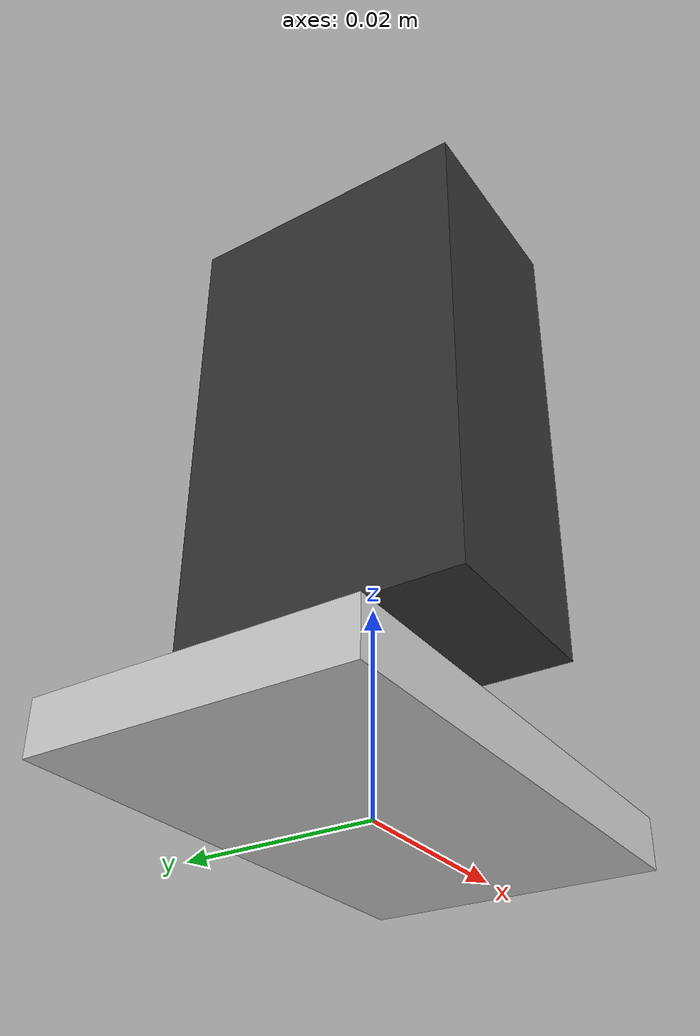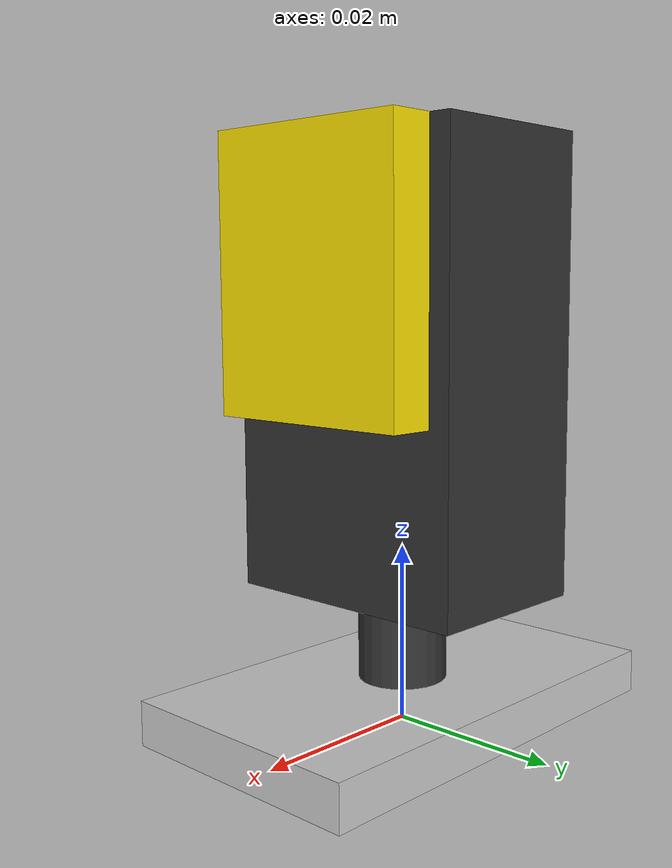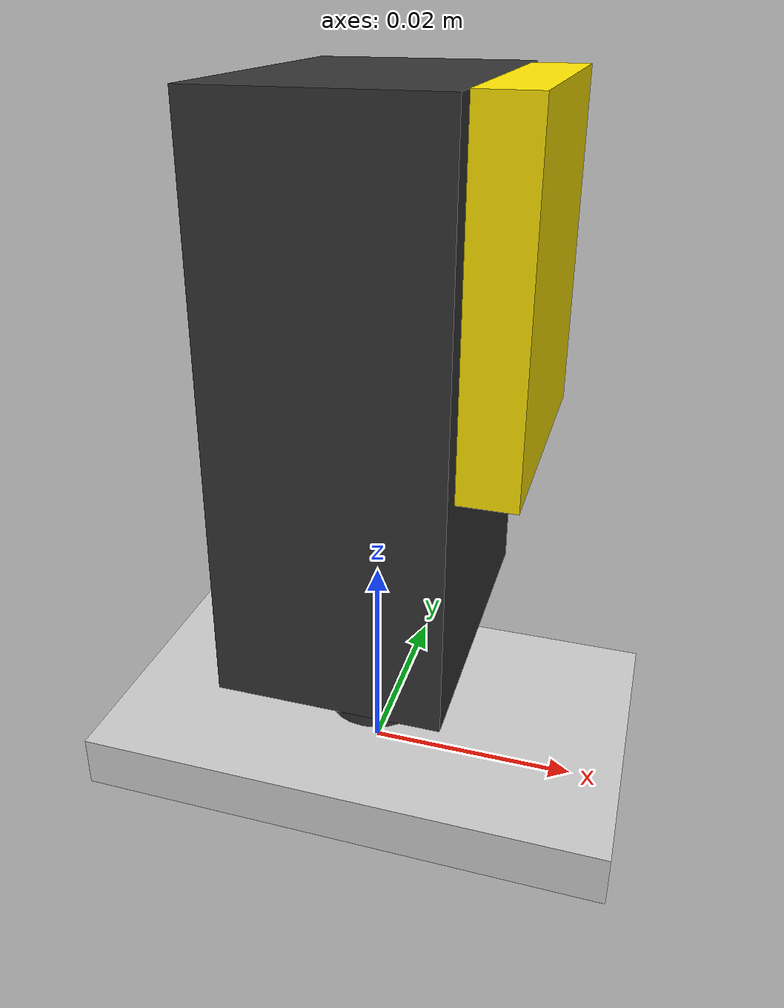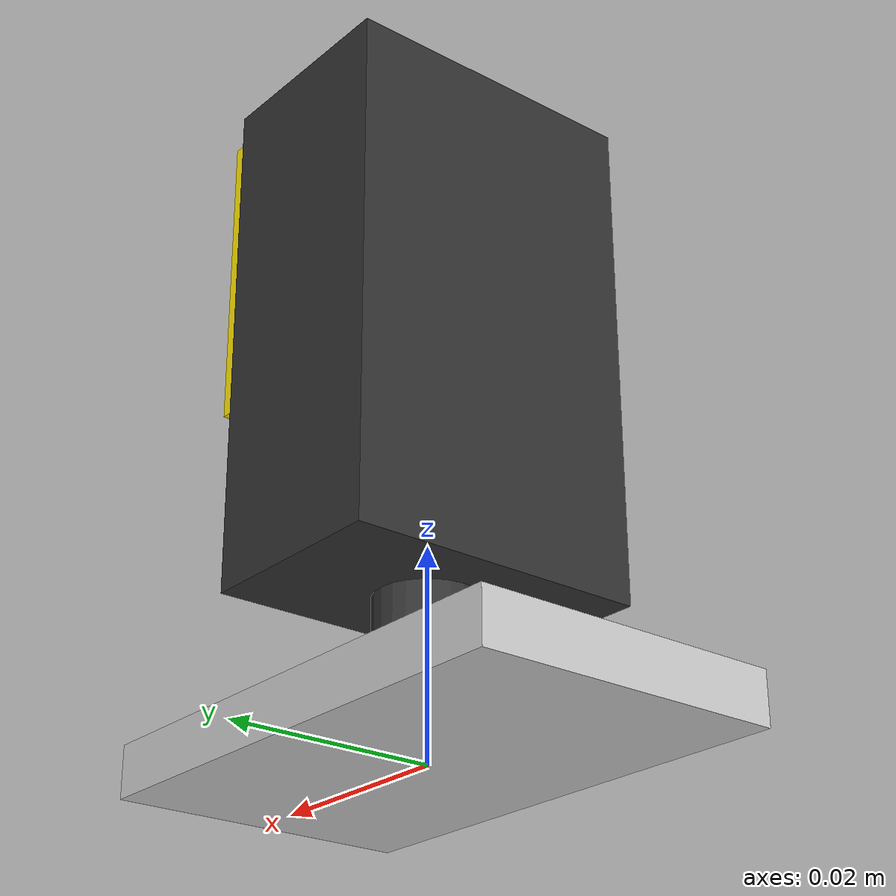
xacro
<?xml version="1.0"?>
<robot name="gimbal" xmlns:xacro="http://www.ros.org/wiki/xacro">

  <!-- ========== GLOBAL MATERIALS ========== -->
  <material name="base_grey">
    <color rgba="0.8 0.8 0.8 1.0"/>
  </material>

  <material name="body_dark">
    <color rgba="0.2 0.2 0.2 1.0"/>
  </material>

  <material name="cam_yellow">
    <color rgba="1.0 0.9 0.0 1.0"/>
  </material>

  <!-- ========== DIMENSIONS (m) ========== -->
  <!-- Base plate: 5 cm x 3 cm x 0.5 cm -->
  <xacro:property name="base_x" value="0.05"/>
  <xacro:property name="base_y" value="0.03"/>
  <xacro:property name="base_z" value="0.005"/>

  <!-- Yaw servo “hub” as cylinder: Ø 1 cm, height 1 cm -->
  <xacro:property name="yaw_r" value="0.005"/>
  <xacro:property name="yaw_h" value="0.01"/>

  <!-- Body (approx. triangle) as box: 5 cm high, 3 cm deep, 2 cm thick -->
  <xacro:property name="body_x" value="0.02"/>   <!-- thickness left-right -->
  <xacro:property name="body_y" value="0.03"/>   <!-- depth front-back -->
  <xacro:property name="body_z" value="0.05"/>   <!-- height -->

  <!-- Camera plate on side: 3 cm x 2.5 cm x 0.5 cm -->
  <xacro:property name="cam_x" value="0.03"/>
  <xacro:property name="cam_y" value="0.025"/>
  <xacro:property name="cam_z" value="0.005"/>

  <!-- Small offset from body top to camera plate centre -->
  <xacro:property name="cam_offset" value="0.015"/>

  <!-- =========================
       LINKS
       ========================= -->

  <!-- base_link: rectangular plate on the ground -->
  <link name="base_link">
    <visual>
      <origin xyz="0 0 ${base_z/2}" rpy="0 0 0"/>
      <geometry>
        <box size="${base_x} ${base_y} ${base_z}"/>
      </geometry>
      <material name="base_grey"/>
    </visual>
    <collision>
      <origin xyz="0 0 ${base_z/2}" rpy="0 0 0"/>
      <geometry>
        <box size="${base_x} ${base_y} ${base_z}"/>
      </geometry>
    </collision>
    <inertial>
      <mass value="0.05"/>
      <origin xyz="0 0 ${base_z/2}" rpy="0 0 0"/>
      <inertia ixx="1e-4" iyy="1e-4" izz="1e-4"
               ixy="0" ixz="0" iyz="0"/>
    </inertial>
  </link>

  <!-- yaw_link: small vertical cylinder at center of plate -->
  <link name="yaw_link">
    <visual>
      <origin xyz="0 0 ${yaw_h/2}" rpy="0 0 0"/>
      <geometry>
        <cylinder radius="${yaw_r}" length="${yaw_h}"/>
      </geometry>
      <material name="body_dark"/>
    </visual>
    <collision>
      <origin xyz="0 0 ${yaw_h/2}" rpy="0 0 0"/>
      <geometry>
        <cylinder radius="${yaw_r}" length="${yaw_h}"/>
      </geometry>
    </collision>
    <inertial>
      <mass value="0.02"/>
      <origin xyz="0 0 ${yaw_h/2}" rpy="0 0 0"/>
      <inertia ixx="5e-5" iyy="5e-5" izz="5e-5"
               ixy="0" ixz="0" iyz="0"/>
    </inertial>
  </link>

  <!-- pitch_link: vertical body (this is the “triangle” approx) -->
  <link name="pitch_link">
    <visual>
      <!-- Base of body sits on top of yaw_link -->
      <origin xyz="0 0 ${body_z/2}" rpy="0 0 0"/>
      <geometry>
        <box size="${body_x} ${body_y} ${body_z}"/>
      </geometry>
      <material name="body_dark"/>
    </visual>
    <collision>
      <origin xyz="0 0 ${body_z/2}" rpy="0 0 0"/>
      <geometry>
        <box size="${body_x} ${body_y} ${body_z}"/>
      </geometry>
    </collision>
    <inertial>
      <mass value="0.04"/>
      <origin xyz="0 0 ${body_z/2}" rpy="0 0 0"/>
      <inertia ixx="1e-3" iyy="1e-3" izz="1e-3"
               ixy="0" ixz="0" iyz="0"/>
    </inertial>
  </link>

  <!-- camera_link: plate mounted on the SIDE of the body -->
  <link name="camera_link">
    <visual>
      <!-- Attach to front face of body, centred, a bit above joint -->
      <origin
        xyz="${body_x/2 + cam_z/2} 0 ${body_z - cam_offset}"
        rpy="0 1.5708 0"/>
      <!-- rpy rotates so plate normal points forward -->
      <geometry>
        <box size="${cam_x} ${cam_y} ${cam_z}"/>
      </geometry>
      <material name="cam_yellow"/>
    </visual>
    <collision>
      <origin
        xyz="${body_x/2 + cam_z/2} 0 ${body_z - cam_offset}"
        rpy="0 1.5708 0"/>
      <geometry>
        <box size="${cam_x} ${cam_y} ${cam_z}"/>
      </geometry>
    </collision>
    <inertial>
      <mass value="0.01"/>
      <origin
        xyz="${body_x/2 + cam_z/2} 0 ${body_z - cam_offset}"
        rpy="0 0 0"/>
      <inertia ixx="5e-4" iyy="5e-4" izz="5e-4"
               ixy="0" ixz="0" iyz="0"/>
    </inertial>
  </link>

  <!-- =========================
       JOINTS
       ========================= -->

  <!-- Yaw: base_link -> yaw_link (rotates around Z, like your bottom servo) -->
  <joint name="yaw_joint" type="continuous">
    <!-- joint origin at centre of cylinder base -->
    <origin xyz="0 0 ${base_z}" rpy="0 0 0"/>
    <parent link="base_link"/>
    <child link="yaw_link"/>
    <!-- rotation around Z (upwards) -->
    <axis xyz="0 0 1"/>
  </joint>

  <!-- Pitch: yaw_link -> pitch_link (rotates around Y, up/down) -->
  <joint name="pitch_joint" type="continuous">
    <!-- bottom of body sits on top of yaw_link -->
    <origin xyz="0 0 ${yaw_h}" rpy="0 0 0"/>
    <parent link="yaw_link"/>
    <child link="pitch_link"/>
    <!-- rotation around Y (right-hand rule) -->
    <axis xyz="0 1 0"/>
  </joint>

  <!-- Fixed joint from body to camera plate -->
  <joint name="camera_fixed" type="fixed">
    <origin xyz="0 0 0" rpy="0 0 0"/>
    <parent link="pitch_link"/>
    <child link="camera_link"/>
  </joint>

</robot>
